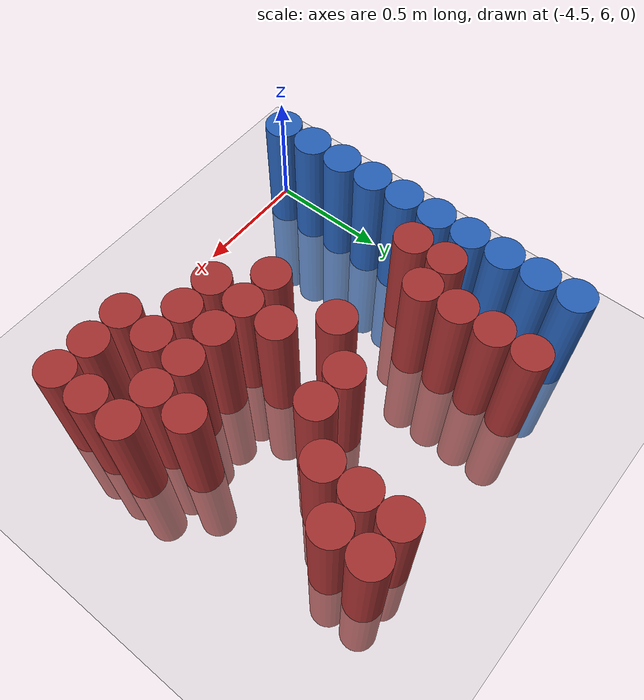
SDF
<sdf version="1.6">
 <world name="default">
  <model name="ground_plane">
   <static>1</static>
   <link name="link">
    <collision name="collision">
     <geometry><plane><normal>0 0 1</normal><size>100 100</size></plane></geometry>
     <surface><friction><ode><mu>100</mu><mu2>50</mu2></ode></friction></surface>
    </collision>
    <visual name="visual">
     <cast_shadows>0</cast_shadows>
     <geometry><plane><normal>0 0 1</normal><size>100 100</size></plane></geometry>
     <material>
      <script><uri>file://media/materials/scripts/gazebo.material</uri><name>Gazebo/Grey</name></script>
     </material>
    </visual>
   </link>
  </model>
  <model name="unit_cylinder_102">
   <static>1</static>
   <pose>-4.425000 6.075000 0.000000 0.000000 0.000000 0.000000</pose>
   <link name="link">
    <inertial>
     <mass>1</mass>
     <inertia><ixx>0.145833</ixx><ixy>0</ixy><ixz>0</ixz><iyy>0.145833</iyy><iyz>0</iyz><izz>0.125</izz></inertia>
    </inertial>
    <collision name="collision">
     <geometry><cylinder><radius>0.075000</radius><length>1</length></cylinder></geometry>
    </collision>
    <visual name="visual">
     <geometry><cylinder><radius>0.075000</radius><length>1</length></cylinder></geometry>
     <material>
      <ambient>0.152000 0.379000 0.720000 1</ambient>
      <diffuse>0.152000 0.379000 0.720000 1</diffuse>
     </material>
     <material>
      <script><name>Gazebo/Grey</name><uri>file://media/materials/scripts/gazebo.material</uri></script>
     </material>
    </visual>
    <sensor name="sensor_contact" type="contact"><contact><collision>collision</collision></contact></sensor>
   </link>
   <plugin filename="gz-sim-touchplugin-system" name="gz::sim::systems::TouchPlugin">
    <target>robot</target>
    <namespace>robot</namespace>
    <time>0.001</time>
    <enabled>true</enabled>
   </plugin>
  </model>
  <model name="unit_cylinder_103">
   <static>1</static>
   <pose>-4.425000 6.225000 0.000000 0.000000 0.000000 0.000000</pose>
   <link name="link">
    <inertial>
     <mass>1</mass>
     <inertia><ixx>0.145833</ixx><ixy>0</ixy><ixz>0</ixz><iyy>0.145833</iyy><iyz>0</iyz><izz>0.125</izz></inertia>
    </inertial>
    <collision name="collision">
     <geometry><cylinder><radius>0.075000</radius><length>1</length></cylinder></geometry>
    </collision>
    <visual name="visual">
     <geometry><cylinder><radius>0.075000</radius><length>1</length></cylinder></geometry>
     <material>
      <ambient>0.152000 0.379000 0.720000 1</ambient>
      <diffuse>0.152000 0.379000 0.720000 1</diffuse>
     </material>
     <material>
      <script><name>Gazebo/Grey</name><uri>file://media/materials/scripts/gazebo.material</uri></script>
     </material>
    </visual>
    <sensor name="sensor_contact" type="contact"><contact><collision>collision</collision></contact></sensor>
   </link>
   <plugin filename="gz-sim-touchplugin-system" name="gz::sim::systems::TouchPlugin">
    <target>robot</target>
    <namespace>robot</namespace>
    <time>0.001</time>
    <enabled>true</enabled>
   </plugin>
  </model>
  <model name="unit_cylinder_104">
   <static>1</static>
   <pose>-4.425000 6.375000 0.000000 0.000000 0.000000 0.000000</pose>
   <link name="link">
    <inertial>
     <mass>1</mass>
     <inertia><ixx>0.145833</ixx><ixy>0</ixy><ixz>0</ixz><iyy>0.145833</iyy><iyz>0</iyz><izz>0.125</izz></inertia>
    </inertial>
    <collision name="collision">
     <geometry><cylinder><radius>0.075000</radius><length>1</length></cylinder></geometry>
    </collision>
    <visual name="visual">
     <geometry><cylinder><radius>0.075000</radius><length>1</length></cylinder></geometry>
     <material>
      <ambient>0.152000 0.379000 0.720000 1</ambient>
      <diffuse>0.152000 0.379000 0.720000 1</diffuse>
     </material>
     <material>
      <script><name>Gazebo/Grey</name><uri>file://media/materials/scripts/gazebo.material</uri></script>
     </material>
    </visual>
    <sensor name="sensor_contact" type="contact"><contact><collision>collision</collision></contact></sensor>
   </link>
   <plugin filename="gz-sim-touchplugin-system" name="gz::sim::systems::TouchPlugin">
    <target>robot</target>
    <namespace>robot</namespace>
    <time>0.001</time>
    <enabled>true</enabled>
   </plugin>
  </model>
  <model name="unit_cylinder_105">
   <static>1</static>
   <pose>-4.425000 6.525000 0.000000 0.000000 0.000000 0.000000</pose>
   <link name="link">
    <inertial>
     <mass>1</mass>
     <inertia><ixx>0.145833</ixx><ixy>0</ixy><ixz>0</ixz><iyy>0.145833</iyy><iyz>0</iyz><izz>0.125</izz></inertia>
    </inertial>
    <collision name="collision">
     <geometry><cylinder><radius>0.075000</radius><length>1</length></cylinder></geometry>
    </collision>
    <visual name="visual">
     <geometry><cylinder><radius>0.075000</radius><length>1</length></cylinder></geometry>
     <material>
      <ambient>0.152000 0.379000 0.720000 1</ambient>
      <diffuse>0.152000 0.379000 0.720000 1</diffuse>
     </material>
     <material>
      <script><name>Gazebo/Grey</name><uri>file://media/materials/scripts/gazebo.material</uri></script>
     </material>
    </visual>
    <sensor name="sensor_contact" type="contact"><contact><collision>collision</collision></contact></sensor>
   </link>
   <plugin filename="gz-sim-touchplugin-system" name="gz::sim::systems::TouchPlugin">
    <target>robot</target>
    <namespace>robot</namespace>
    <time>0.001</time>
    <enabled>true</enabled>
   </plugin>
  </model>
  <model name="unit_cylinder_106">
   <static>1</static>
   <pose>-4.425000 6.675000 0.000000 0.000000 0.000000 0.000000</pose>
   <link name="link">
    <inertial>
     <mass>1</mass>
     <inertia><ixx>0.145833</ixx><ixy>0</ixy><ixz>0</ixz><iyy>0.145833</iyy><iyz>0</iyz><izz>0.125</izz></inertia>
    </inertial>
    <collision name="collision">
     <geometry><cylinder><radius>0.075000</radius><length>1</length></cylinder></geometry>
    </collision>
    <visual name="visual">
     <geometry><cylinder><radius>0.075000</radius><length>1</length></cylinder></geometry>
     <material>
      <ambient>0.152000 0.379000 0.720000 1</ambient>
      <diffuse>0.152000 0.379000 0.720000 1</diffuse>
     </material>
     <material>
      <script><name>Gazebo/Grey</name><uri>file://media/materials/scripts/gazebo.material</uri></script>
     </material>
    </visual>
    <sensor name="sensor_contact" type="contact"><contact><collision>collision</collision></contact></sensor>
   </link>
   <plugin filename="gz-sim-touchplugin-system" name="gz::sim::systems::TouchPlugin">
    <target>robot</target>
    <namespace>robot</namespace>
    <time>0.001</time>
    <enabled>true</enabled>
   </plugin>
  </model>
  <model name="unit_cylinder_107">
   <static>1</static>
   <pose>-4.425000 6.825000 0.000000 0.000000 0.000000 0.000000</pose>
   <link name="link">
    <inertial>
     <mass>1</mass>
     <inertia><ixx>0.145833</ixx><ixy>0</ixy><ixz>0</ixz><iyy>0.145833</iyy><iyz>0</iyz><izz>0.125</izz></inertia>
    </inertial>
    <collision name="collision">
     <geometry><cylinder><radius>0.075000</radius><length>1</length></cylinder></geometry>
    </collision>
    <visual name="visual">
     <geometry><cylinder><radius>0.075000</radius><length>1</length></cylinder></geometry>
     <material>
      <ambient>0.152000 0.379000 0.720000 1</ambient>
      <diffuse>0.152000 0.379000 0.720000 1</diffuse>
     </material>
     <material>
      <script><name>Gazebo/Grey</name><uri>file://media/materials/scripts/gazebo.material</uri></script>
     </material>
    </visual>
    <sensor name="sensor_contact" type="contact"><contact><collision>collision</collision></contact></sensor>
   </link>
   <plugin filename="gz-sim-touchplugin-system" name="gz::sim::systems::TouchPlugin">
    <target>robot</target>
    <namespace>robot</namespace>
    <time>0.001</time>
    <enabled>true</enabled>
   </plugin>
  </model>
  <model name="unit_cylinder_108">
   <static>1</static>
   <pose>-4.425000 6.975000 0.000000 0.000000 0.000000 0.000000</pose>
   <link name="link">
    <inertial>
     <mass>1</mass>
     <inertia><ixx>0.145833</ixx><ixy>0</ixy><ixz>0</ixz><iyy>0.145833</iyy><iyz>0</iyz><izz>0.125</izz></inertia>
    </inertial>
    <collision name="collision">
     <geometry><cylinder><radius>0.075000</radius><length>1</length></cylinder></geometry>
    </collision>
    <visual name="visual">
     <geometry><cylinder><radius>0.075000</radius><length>1</length></cylinder></geometry>
     <material>
      <ambient>0.152000 0.379000 0.720000 1</ambient>
      <diffuse>0.152000 0.379000 0.720000 1</diffuse>
     </material>
     <material>
      <script><name>Gazebo/Grey</name><uri>file://media/materials/scripts/gazebo.material</uri></script>
     </material>
    </visual>
    <sensor name="sensor_contact" type="contact"><contact><collision>collision</collision></contact></sensor>
   </link>
   <plugin filename="gz-sim-touchplugin-system" name="gz::sim::systems::TouchPlugin">
    <target>robot</target>
    <namespace>robot</namespace>
    <time>0.001</time>
    <enabled>true</enabled>
   </plugin>
  </model>
  <model name="unit_cylinder_109">
   <static>1</static>
   <pose>-4.425000 7.125000 0.000000 0.000000 0.000000 0.000000</pose>
   <link name="link">
    <inertial>
     <mass>1</mass>
     <inertia><ixx>0.145833</ixx><ixy>0</ixy><ixz>0</ixz><iyy>0.145833</iyy><iyz>0</iyz><izz>0.125</izz></inertia>
    </inertial>
    <collision name="collision">
     <geometry><cylinder><radius>0.075000</radius><length>1</length></cylinder></geometry>
    </collision>
    <visual name="visual">
     <geometry><cylinder><radius>0.075000</radius><length>1</length></cylinder></geometry>
     <material>
      <ambient>0.152000 0.379000 0.720000 1</ambient>
      <diffuse>0.152000 0.379000 0.720000 1</diffuse>
     </material>
     <material>
      <script><name>Gazebo/Grey</name><uri>file://media/materials/scripts/gazebo.material</uri></script>
     </material>
    </visual>
    <sensor name="sensor_contact" type="contact"><contact><collision>collision</collision></contact></sensor>
   </link>
   <plugin filename="gz-sim-touchplugin-system" name="gz::sim::systems::TouchPlugin">
    <target>robot</target>
    <namespace>robot</namespace>
    <time>0.001</time>
    <enabled>true</enabled>
   </plugin>
  </model>
  <model name="unit_cylinder_110">
   <static>1</static>
   <pose>-4.425000 7.275000 0.000000 0.000000 0.000000 0.000000</pose>
   <link name="link">
    <inertial>
     <mass>1</mass>
     <inertia><ixx>0.145833</ixx><ixy>0</ixy><ixz>0</ixz><iyy>0.145833</iyy><iyz>0</iyz><izz>0.125</izz></inertia>
    </inertial>
    <collision name="collision">
     <geometry><cylinder><radius>0.075000</radius><length>1</length></cylinder></geometry>
    </collision>
    <visual name="visual">
     <geometry><cylinder><radius>0.075000</radius><length>1</length></cylinder></geometry>
     <material>
      <ambient>0.152000 0.379000 0.720000 1</ambient>
      <diffuse>0.152000 0.379000 0.720000 1</diffuse>
     </material>
     <material>
      <script><name>Gazebo/Grey</name><uri>file://media/materials/scripts/gazebo.material</uri></script>
     </material>
    </visual>
    <sensor name="sensor_contact" type="contact"><contact><collision>collision</collision></contact></sensor>
   </link>
   <plugin filename="gz-sim-touchplugin-system" name="gz::sim::systems::TouchPlugin">
    <target>robot</target>
    <namespace>robot</namespace>
    <time>0.001</time>
    <enabled>true</enabled>
   </plugin>
  </model>
  <model name="unit_cylinder_111">
   <static>1</static>
   <pose>-4.425000 7.425000 0.000000 0.000000 0.000000 0.000000</pose>
   <link name="link">
    <inertial>
     <mass>1</mass>
     <inertia><ixx>0.145833</ixx><ixy>0</ixy><ixz>0</ixz><iyy>0.145833</iyy><iyz>0</iyz><izz>0.125</izz></inertia>
    </inertial>
    <collision name="collision">
     <geometry><cylinder><radius>0.075000</radius><length>1</length></cylinder></geometry>
    </collision>
    <visual name="visual">
     <geometry><cylinder><radius>0.075000</radius><length>1</length></cylinder></geometry>
     <material>
      <ambient>0.152000 0.379000 0.720000 1</ambient>
      <diffuse>0.152000 0.379000 0.720000 1</diffuse>
     </material>
     <material>
      <script><name>Gazebo/Grey</name><uri>file://media/materials/scripts/gazebo.material</uri></script>
     </material>
    </visual>
    <sensor name="sensor_contact" type="contact"><contact><collision>collision</collision></contact></sensor>
   </link>
   <plugin filename="gz-sim-touchplugin-system" name="gz::sim::systems::TouchPlugin">
    <target>robot</target>
    <namespace>robot</namespace>
    <time>0.001</time>
    <enabled>true</enabled>
   </plugin>
  </model>
  <model name="unit_cylinder_130">
   <static>1</static>
   <pose>-4.275000 6.825000 0.000000 0.000000 0.000000 0.000000</pose>
   <link name="link">
    <inertial>
     <mass>1</mass>
     <inertia><ixx>0.145833</ixx><ixy>0</ixy><ixz>0</ixz><iyy>0.145833</iyy><iyz>0</iyz><izz>0.125</izz></inertia>
    </inertial>
    <collision name="collision">
     <geometry><cylinder><radius>0.075000</radius><length>1</length></cylinder></geometry>
    </collision>
    <visual name="visual">
     <geometry><cylinder><radius>0.075000</radius><length>1</length></cylinder></geometry>
     <material>
      <ambient>0.648000 0.192000 0.192000 1</ambient>
      <diffuse>0.648000 0.192000 0.192000 1</diffuse>
     </material>
     <material>
      <script><name>Gazebo/Grey</name><uri>file://media/materials/scripts/gazebo.material</uri></script>
     </material>
    </visual>
    <sensor name="sensor_contact" type="contact"><contact><collision>collision</collision></contact></sensor>
   </link>
   <plugin filename="gz-sim-touchplugin-system" name="gz::sim::systems::TouchPlugin">
    <target>robot</target>
    <namespace>robot</namespace>
    <time>0.001</time>
    <enabled>true</enabled>
   </plugin>
  </model>
  <model name="unit_cylinder_131">
   <static>1</static>
   <pose>-4.275000 6.975000 0.000000 0.000000 0.000000 0.000000</pose>
   <link name="link">
    <inertial>
     <mass>1</mass>
     <inertia><ixx>0.145833</ixx><ixy>0</ixy><ixz>0</ixz><iyy>0.145833</iyy><iyz>0</iyz><izz>0.125</izz></inertia>
    </inertial>
    <collision name="collision">
     <geometry><cylinder><radius>0.075000</radius><length>1</length></cylinder></geometry>
    </collision>
    <visual name="visual">
     <geometry><cylinder><radius>0.075000</radius><length>1</length></cylinder></geometry>
     <material>
      <ambient>0.648000 0.192000 0.192000 1</ambient>
      <diffuse>0.648000 0.192000 0.192000 1</diffuse>
     </material>
     <material>
      <script><name>Gazebo/Grey</name><uri>file://media/materials/scripts/gazebo.material</uri></script>
     </material>
    </visual>
    <sensor name="sensor_contact" type="contact"><contact><collision>collision</collision></contact></sensor>
   </link>
   <plugin filename="gz-sim-touchplugin-system" name="gz::sim::systems::TouchPlugin">
    <target>robot</target>
    <namespace>robot</namespace>
    <time>0.001</time>
    <enabled>true</enabled>
   </plugin>
  </model>
  <model name="unit_cylinder_136">
   <static>1</static>
   <pose>-4.125000 6.975000 0.000000 0.000000 0.000000 0.000000</pose>
   <link name="link">
    <inertial>
     <mass>1</mass>
     <inertia><ixx>0.145833</ixx><ixy>0</ixy><ixz>0</ixz><iyy>0.145833</iyy><iyz>0</iyz><izz>0.125</izz></inertia>
    </inertial>
    <collision name="collision">
     <geometry><cylinder><radius>0.075000</radius><length>1</length></cylinder></geometry>
    </collision>
    <visual name="visual">
     <geometry><cylinder><radius>0.075000</radius><length>1</length></cylinder></geometry>
     <material>
      <ambient>0.648000 0.192000 0.192000 1</ambient>
      <diffuse>0.648000 0.192000 0.192000 1</diffuse>
     </material>
     <material>
      <script><name>Gazebo/Grey</name><uri>file://media/materials/scripts/gazebo.material</uri></script>
     </material>
    </visual>
    <sensor name="sensor_contact" type="contact"><contact><collision>collision</collision></contact></sensor>
   </link>
   <plugin filename="gz-sim-touchplugin-system" name="gz::sim::systems::TouchPlugin">
    <target>robot</target>
    <namespace>robot</namespace>
    <time>0.001</time>
    <enabled>true</enabled>
   </plugin>
  </model>
  <model name="unit_cylinder_137">
   <static>1</static>
   <pose>-4.125000 7.125000 0.000000 0.000000 0.000000 0.000000</pose>
   <link name="link">
    <inertial>
     <mass>1</mass>
     <inertia><ixx>0.145833</ixx><ixy>0</ixy><ixz>0</ixz><iyy>0.145833</iyy><iyz>0</iyz><izz>0.125</izz></inertia>
    </inertial>
    <collision name="collision">
     <geometry><cylinder><radius>0.075000</radius><length>1</length></cylinder></geometry>
    </collision>
    <visual name="visual">
     <geometry><cylinder><radius>0.075000</radius><length>1</length></cylinder></geometry>
     <material>
      <ambient>0.648000 0.192000 0.192000 1</ambient>
      <diffuse>0.648000 0.192000 0.192000 1</diffuse>
     </material>
     <material>
      <script><name>Gazebo/Grey</name><uri>file://media/materials/scripts/gazebo.material</uri></script>
     </material>
    </visual>
    <sensor name="sensor_contact" type="contact"><contact><collision>collision</collision></contact></sensor>
   </link>
   <plugin filename="gz-sim-touchplugin-system" name="gz::sim::systems::TouchPlugin">
    <target>robot</target>
    <namespace>robot</namespace>
    <time>0.001</time>
    <enabled>true</enabled>
   </plugin>
  </model>
  <model name="unit_cylinder_138">
   <static>1</static>
   <pose>-4.125000 7.275000 0.000000 0.000000 0.000000 0.000000</pose>
   <link name="link">
    <inertial>
     <mass>1</mass>
     <inertia><ixx>0.145833</ixx><ixy>0</ixy><ixz>0</ixz><iyy>0.145833</iyy><iyz>0</iyz><izz>0.125</izz></inertia>
    </inertial>
    <collision name="collision">
     <geometry><cylinder><radius>0.075000</radius><length>1</length></cylinder></geometry>
    </collision>
    <visual name="visual">
     <geometry><cylinder><radius>0.075000</radius><length>1</length></cylinder></geometry>
     <material>
      <ambient>0.648000 0.192000 0.192000 1</ambient>
      <diffuse>0.648000 0.192000 0.192000 1</diffuse>
     </material>
     <material>
      <script><name>Gazebo/Grey</name><uri>file://media/materials/scripts/gazebo.material</uri></script>
     </material>
    </visual>
    <sensor name="sensor_contact" type="contact"><contact><collision>collision</collision></contact></sensor>
   </link>
   <plugin filename="gz-sim-touchplugin-system" name="gz::sim::systems::TouchPlugin">
    <target>robot</target>
    <namespace>robot</namespace>
    <time>0.001</time>
    <enabled>true</enabled>
   </plugin>
  </model>
  <model name="unit_cylinder_139">
   <static>1</static>
   <pose>-4.125000 7.425000 0.000000 0.000000 0.000000 0.000000</pose>
   <link name="link">
    <inertial>
     <mass>1</mass>
     <inertia><ixx>0.145833</ixx><ixy>0</ixy><ixz>0</ixz><iyy>0.145833</iyy><iyz>0</iyz><izz>0.125</izz></inertia>
    </inertial>
    <collision name="collision">
     <geometry><cylinder><radius>0.075000</radius><length>1</length></cylinder></geometry>
    </collision>
    <visual name="visual">
     <geometry><cylinder><radius>0.075000</radius><length>1</length></cylinder></geometry>
     <material>
      <ambient>0.648000 0.192000 0.192000 1</ambient>
      <diffuse>0.648000 0.192000 0.192000 1</diffuse>
     </material>
     <material>
      <script><name>Gazebo/Grey</name><uri>file://media/materials/scripts/gazebo.material</uri></script>
     </material>
    </visual>
    <sensor name="sensor_contact" type="contact"><contact><collision>collision</collision></contact></sensor>
   </link>
   <plugin filename="gz-sim-touchplugin-system" name="gz::sim::systems::TouchPlugin">
    <target>robot</target>
    <namespace>robot</namespace>
    <time>0.001</time>
    <enabled>true</enabled>
   </plugin>
  </model>
  <model name="unit_cylinder_149">
   <static>1</static>
   <pose>-3.825000 6.525000 0.000000 0.000000 0.000000 0.000000</pose>
   <link name="link">
    <inertial>
     <mass>1</mass>
     <inertia><ixx>0.145833</ixx><ixy>0</ixy><ixz>0</ixz><iyy>0.145833</iyy><iyz>0</iyz><izz>0.125</izz></inertia>
    </inertial>
    <collision name="collision">
     <geometry><cylinder><radius>0.075000</radius><length>1</length></cylinder></geometry>
    </collision>
    <visual name="visual">
     <geometry><cylinder><radius>0.075000</radius><length>1</length></cylinder></geometry>
     <material>
      <ambient>0.648000 0.192000 0.192000 1</ambient>
      <diffuse>0.648000 0.192000 0.192000 1</diffuse>
     </material>
     <material>
      <script><name>Gazebo/Grey</name><uri>file://media/materials/scripts/gazebo.material</uri></script>
     </material>
    </visual>
    <sensor name="sensor_contact" type="contact"><contact><collision>collision</collision></contact></sensor>
   </link>
   <plugin filename="gz-sim-touchplugin-system" name="gz::sim::systems::TouchPlugin">
    <target>robot</target>
    <namespace>robot</namespace>
    <time>0.001</time>
    <enabled>true</enabled>
   </plugin>
  </model>
  <model name="unit_cylinder_150">
   <static>1</static>
   <pose>-3.825000 6.825000 0.000000 0.000000 0.000000 0.000000</pose>
   <link name="link">
    <inertial>
     <mass>1</mass>
     <inertia><ixx>0.145833</ixx><ixy>0</ixy><ixz>0</ixz><iyy>0.145833</iyy><iyz>0</iyz><izz>0.125</izz></inertia>
    </inertial>
    <collision name="collision">
     <geometry><cylinder><radius>0.075000</radius><length>1</length></cylinder></geometry>
    </collision>
    <visual name="visual">
     <geometry><cylinder><radius>0.075000</radius><length>1</length></cylinder></geometry>
     <material>
      <ambient>0.648000 0.192000 0.192000 1</ambient>
      <diffuse>0.648000 0.192000 0.192000 1</diffuse>
     </material>
     <material>
      <script><name>Gazebo/Grey</name><uri>file://media/materials/scripts/gazebo.material</uri></script>
     </material>
    </visual>
    <sensor name="sensor_contact" type="contact"><contact><collision>collision</collision></contact></sensor>
   </link>
   <plugin filename="gz-sim-touchplugin-system" name="gz::sim::systems::TouchPlugin">
    <target>robot</target>
    <namespace>robot</namespace>
    <time>0.001</time>
    <enabled>true</enabled>
   </plugin>
  </model>
  <model name="unit_cylinder_156">
   <static>1</static>
   <pose>-3.675000 6.375000 0.000000 0.000000 0.000000 0.000000</pose>
   <link name="link">
    <inertial>
     <mass>1</mass>
     <inertia><ixx>0.145833</ixx><ixy>0</ixy><ixz>0</ixz><iyy>0.145833</iyy><iyz>0</iyz><izz>0.125</izz></inertia>
    </inertial>
    <collision name="collision">
     <geometry><cylinder><radius>0.075000</radius><length>1</length></cylinder></geometry>
    </collision>
    <visual name="visual">
     <geometry><cylinder><radius>0.075000</radius><length>1</length></cylinder></geometry>
     <material>
      <ambient>0.648000 0.192000 0.192000 1</ambient>
      <diffuse>0.648000 0.192000 0.192000 1</diffuse>
     </material>
     <material>
      <script><name>Gazebo/Grey</name><uri>file://media/materials/scripts/gazebo.material</uri></script>
     </material>
    </visual>
    <sensor name="sensor_contact" type="contact"><contact><collision>collision</collision></contact></sensor>
   </link>
   <plugin filename="gz-sim-touchplugin-system" name="gz::sim::systems::TouchPlugin">
    <target>robot</target>
    <namespace>robot</namespace>
    <time>0.001</time>
    <enabled>true</enabled>
   </plugin>
  </model>
  <model name="unit_cylinder_157">
   <static>1</static>
   <pose>-3.675000 6.525000 0.000000 0.000000 0.000000 0.000000</pose>
   <link name="link">
    <inertial>
     <mass>1</mass>
     <inertia><ixx>0.145833</ixx><ixy>0</ixy><ixz>0</ixz><iyy>0.145833</iyy><iyz>0</iyz><izz>0.125</izz></inertia>
    </inertial>
    <collision name="collision">
     <geometry><cylinder><radius>0.075000</radius><length>1</length></cylinder></geometry>
    </collision>
    <visual name="visual">
     <geometry><cylinder><radius>0.075000</radius><length>1</length></cylinder></geometry>
     <material>
      <ambient>0.648000 0.192000 0.192000 1</ambient>
      <diffuse>0.648000 0.192000 0.192000 1</diffuse>
     </material>
     <material>
      <script><name>Gazebo/Grey</name><uri>file://media/materials/scripts/gazebo.material</uri></script>
     </material>
    </visual>
    <sensor name="sensor_contact" type="contact"><contact><collision>collision</collision></contact></sensor>
   </link>
   <plugin filename="gz-sim-touchplugin-system" name="gz::sim::systems::TouchPlugin">
    <target>robot</target>
    <namespace>robot</namespace>
    <time>0.001</time>
    <enabled>true</enabled>
   </plugin>
  </model>
  <model name="unit_cylinder_158">
   <static>1</static>
   <pose>-3.675000 6.675000 0.000000 0.000000 0.000000 0.000000</pose>
   <link name="link">
    <inertial>
     <mass>1</mass>
     <inertia><ixx>0.145833</ixx><ixy>0</ixy><ixz>0</ixz><iyy>0.145833</iyy><iyz>0</iyz><izz>0.125</izz></inertia>
    </inertial>
    <collision name="collision">
     <geometry><cylinder><radius>0.075000</radius><length>1</length></cylinder></geometry>
    </collision>
    <visual name="visual">
     <geometry><cylinder><radius>0.075000</radius><length>1</length></cylinder></geometry>
     <material>
      <ambient>0.648000 0.192000 0.192000 1</ambient>
      <diffuse>0.648000 0.192000 0.192000 1</diffuse>
     </material>
     <material>
      <script><name>Gazebo/Grey</name><uri>file://media/materials/scripts/gazebo.material</uri></script>
     </material>
    </visual>
    <sensor name="sensor_contact" type="contact"><contact><collision>collision</collision></contact></sensor>
   </link>
   <plugin filename="gz-sim-touchplugin-system" name="gz::sim::systems::TouchPlugin">
    <target>robot</target>
    <namespace>robot</namespace>
    <time>0.001</time>
    <enabled>true</enabled>
   </plugin>
  </model>
  <model name="unit_cylinder_159">
   <static>1</static>
   <pose>-3.675000 6.975000 0.000000 0.000000 0.000000 0.000000</pose>
   <link name="link">
    <inertial>
     <mass>1</mass>
     <inertia><ixx>0.145833</ixx><ixy>0</ixy><ixz>0</ixz><iyy>0.145833</iyy><iyz>0</iyz><izz>0.125</izz></inertia>
    </inertial>
    <collision name="collision">
     <geometry><cylinder><radius>0.075000</radius><length>1</length></cylinder></geometry>
    </collision>
    <visual name="visual">
     <geometry><cylinder><radius>0.075000</radius><length>1</length></cylinder></geometry>
     <material>
      <ambient>0.648000 0.192000 0.192000 1</ambient>
      <diffuse>0.648000 0.192000 0.192000 1</diffuse>
     </material>
     <material>
      <script><name>Gazebo/Grey</name><uri>file://media/materials/scripts/gazebo.material</uri></script>
     </material>
    </visual>
    <sensor name="sensor_contact" type="contact"><contact><collision>collision</collision></contact></sensor>
   </link>
   <plugin filename="gz-sim-touchplugin-system" name="gz::sim::systems::TouchPlugin">
    <target>robot</target>
    <namespace>robot</namespace>
    <time>0.001</time>
    <enabled>true</enabled>
   </plugin>
  </model>
  <model name="unit_cylinder_165">
   <static>1</static>
   <pose>-3.525000 6.375000 0.000000 0.000000 0.000000 0.000000</pose>
   <link name="link">
    <inertial>
     <mass>1</mass>
     <inertia><ixx>0.145833</ixx><ixy>0</ixy><ixz>0</ixz><iyy>0.145833</iyy><iyz>0</iyz><izz>0.125</izz></inertia>
    </inertial>
    <collision name="collision">
     <geometry><cylinder><radius>0.075000</radius><length>1</length></cylinder></geometry>
    </collision>
    <visual name="visual">
     <geometry><cylinder><radius>0.075000</radius><length>1</length></cylinder></geometry>
     <material>
      <ambient>0.648000 0.192000 0.192000 1</ambient>
      <diffuse>0.648000 0.192000 0.192000 1</diffuse>
     </material>
     <material>
      <script><name>Gazebo/Grey</name><uri>file://media/materials/scripts/gazebo.material</uri></script>
     </material>
    </visual>
    <sensor name="sensor_contact" type="contact"><contact><collision>collision</collision></contact></sensor>
   </link>
   <plugin filename="gz-sim-touchplugin-system" name="gz::sim::systems::TouchPlugin">
    <target>robot</target>
    <namespace>robot</namespace>
    <time>0.001</time>
    <enabled>true</enabled>
   </plugin>
  </model>
  <model name="unit_cylinder_166">
   <static>1</static>
   <pose>-3.525000 6.525000 0.000000 0.000000 0.000000 0.000000</pose>
   <link name="link">
    <inertial>
     <mass>1</mass>
     <inertia><ixx>0.145833</ixx><ixy>0</ixy><ixz>0</ixz><iyy>0.145833</iyy><iyz>0</iyz><izz>0.125</izz></inertia>
    </inertial>
    <collision name="collision">
     <geometry><cylinder><radius>0.075000</radius><length>1</length></cylinder></geometry>
    </collision>
    <visual name="visual">
     <geometry><cylinder><radius>0.075000</radius><length>1</length></cylinder></geometry>
     <material>
      <ambient>0.648000 0.192000 0.192000 1</ambient>
      <diffuse>0.648000 0.192000 0.192000 1</diffuse>
     </material>
     <material>
      <script><name>Gazebo/Grey</name><uri>file://media/materials/scripts/gazebo.material</uri></script>
     </material>
    </visual>
    <sensor name="sensor_contact" type="contact"><contact><collision>collision</collision></contact></sensor>
   </link>
   <plugin filename="gz-sim-touchplugin-system" name="gz::sim::systems::TouchPlugin">
    <target>robot</target>
    <namespace>robot</namespace>
    <time>0.001</time>
    <enabled>true</enabled>
   </plugin>
  </model>
  <model name="unit_cylinder_167">
   <static>1</static>
   <pose>-3.525000 6.975000 0.000000 0.000000 0.000000 0.000000</pose>
   <link name="link">
    <inertial>
     <mass>1</mass>
     <inertia><ixx>0.145833</ixx><ixy>0</ixy><ixz>0</ixz><iyy>0.145833</iyy><iyz>0</iyz><izz>0.125</izz></inertia>
    </inertial>
    <collision name="collision">
     <geometry><cylinder><radius>0.075000</radius><length>1</length></cylinder></geometry>
    </collision>
    <visual name="visual">
     <geometry><cylinder><radius>0.075000</radius><length>1</length></cylinder></geometry>
     <material>
      <ambient>0.648000 0.192000 0.192000 1</ambient>
      <diffuse>0.648000 0.192000 0.192000 1</diffuse>
     </material>
     <material>
      <script><name>Gazebo/Grey</name><uri>file://media/materials/scripts/gazebo.material</uri></script>
     </material>
    </visual>
    <sensor name="sensor_contact" type="contact"><contact><collision>collision</collision></contact></sensor>
   </link>
   <plugin filename="gz-sim-touchplugin-system" name="gz::sim::systems::TouchPlugin">
    <target>robot</target>
    <namespace>robot</namespace>
    <time>0.001</time>
    <enabled>true</enabled>
   </plugin>
  </model>
  <model name="unit_cylinder_173">
   <static>1</static>
   <pose>-3.375000 6.225000 0.000000 0.000000 0.000000 0.000000</pose>
   <link name="link">
    <inertial>
     <mass>1</mass>
     <inertia><ixx>0.145833</ixx><ixy>0</ixy><ixz>0</ixz><iyy>0.145833</iyy><iyz>0</iyz><izz>0.125</izz></inertia>
    </inertial>
    <collision name="collision">
     <geometry><cylinder><radius>0.075000</radius><length>1</length></cylinder></geometry>
    </collision>
    <visual name="visual">
     <geometry><cylinder><radius>0.075000</radius><length>1</length></cylinder></geometry>
     <material>
      <ambient>0.648000 0.192000 0.192000 1</ambient>
      <diffuse>0.648000 0.192000 0.192000 1</diffuse>
     </material>
     <material>
      <script><name>Gazebo/Grey</name><uri>file://media/materials/scripts/gazebo.material</uri></script>
     </material>
    </visual>
    <sensor name="sensor_contact" type="contact"><contact><collision>collision</collision></contact></sensor>
   </link>
   <plugin filename="gz-sim-touchplugin-system" name="gz::sim::systems::TouchPlugin">
    <target>robot</target>
    <namespace>robot</namespace>
    <time>0.001</time>
    <enabled>true</enabled>
   </plugin>
  </model>
  <model name="unit_cylinder_174">
   <static>1</static>
   <pose>-3.375000 6.375000 0.000000 0.000000 0.000000 0.000000</pose>
   <link name="link">
    <inertial>
     <mass>1</mass>
     <inertia><ixx>0.145833</ixx><ixy>0</ixy><ixz>0</ixz><iyy>0.145833</iyy><iyz>0</iyz><izz>0.125</izz></inertia>
    </inertial>
    <collision name="collision">
     <geometry><cylinder><radius>0.075000</radius><length>1</length></cylinder></geometry>
    </collision>
    <visual name="visual">
     <geometry><cylinder><radius>0.075000</radius><length>1</length></cylinder></geometry>
     <material>
      <ambient>0.648000 0.192000 0.192000 1</ambient>
      <diffuse>0.648000 0.192000 0.192000 1</diffuse>
     </material>
     <material>
      <script><name>Gazebo/Grey</name><uri>file://media/materials/scripts/gazebo.material</uri></script>
     </material>
    </visual>
    <sensor name="sensor_contact" type="contact"><contact><collision>collision</collision></contact></sensor>
   </link>
   <plugin filename="gz-sim-touchplugin-system" name="gz::sim::systems::TouchPlugin">
    <target>robot</target>
    <namespace>robot</namespace>
    <time>0.001</time>
    <enabled>true</enabled>
   </plugin>
  </model>
  <model name="unit_cylinder_175">
   <static>1</static>
   <pose>-3.375000 6.525000 0.000000 0.000000 0.000000 0.000000</pose>
   <link name="link">
    <inertial>
     <mass>1</mass>
     <inertia><ixx>0.145833</ixx><ixy>0</ixy><ixz>0</ixz><iyy>0.145833</iyy><iyz>0</iyz><izz>0.125</izz></inertia>
    </inertial>
    <collision name="collision">
     <geometry><cylinder><radius>0.075000</radius><length>1</length></cylinder></geometry>
    </collision>
    <visual name="visual">
     <geometry><cylinder><radius>0.075000</radius><length>1</length></cylinder></geometry>
     <material>
      <ambient>0.648000 0.192000 0.192000 1</ambient>
      <diffuse>0.648000 0.192000 0.192000 1</diffuse>
     </material>
     <material>
      <script><name>Gazebo/Grey</name><uri>file://media/materials/scripts/gazebo.material</uri></script>
     </material>
    </visual>
    <sensor name="sensor_contact" type="contact"><contact><collision>collision</collision></contact></sensor>
   </link>
   <plugin filename="gz-sim-touchplugin-system" name="gz::sim::systems::TouchPlugin">
    <target>robot</target>
    <namespace>robot</namespace>
    <time>0.001</time>
    <enabled>true</enabled>
   </plugin>
  </model>
  <model name="unit_cylinder_176">
   <static>1</static>
   <pose>-3.375000 7.125000 0.000000 0.000000 0.000000 0.000000</pose>
   <link name="link">
    <inertial>
     <mass>1</mass>
     <inertia><ixx>0.145833</ixx><ixy>0</ixy><ixz>0</ixz><iyy>0.145833</iyy><iyz>0</iyz><izz>0.125</izz></inertia>
    </inertial>
    <collision name="collision">
     <geometry><cylinder><radius>0.075000</radius><length>1</length></cylinder></geometry>
    </collision>
    <visual name="visual">
     <geometry><cylinder><radius>0.075000</radius><length>1</length></cylinder></geometry>
     <material>
      <ambient>0.648000 0.192000 0.192000 1</ambient>
      <diffuse>0.648000 0.192000 0.192000 1</diffuse>
     </material>
     <material>
      <script><name>Gazebo/Grey</name><uri>file://media/materials/scripts/gazebo.material</uri></script>
     </material>
    </visual>
    <sensor name="sensor_contact" type="contact"><contact><collision>collision</collision></contact></sensor>
   </link>
   <plugin filename="gz-sim-touchplugin-system" name="gz::sim::systems::TouchPlugin">
    <target>robot</target>
    <namespace>robot</namespace>
    <time>0.001</time>
    <enabled>true</enabled>
   </plugin>
  </model>
  <model name="unit_cylinder_177">
   <static>1</static>
   <pose>-3.375000 7.275000 0.000000 0.000000 0.000000 0.000000</pose>
   <link name="link">
    <inertial>
     <mass>1</mass>
     <inertia><ixx>0.145833</ixx><ixy>0</ixy><ixz>0</ixz><iyy>0.145833</iyy><iyz>0</iyz><izz>0.125</izz></inertia>
    </inertial>
    <collision name="collision">
     <geometry><cylinder><radius>0.075000</radius><length>1</length></cylinder></geometry>
    </collision>
    <visual name="visual">
     <geometry><cylinder><radius>0.075000</radius><length>1</length></cylinder></geometry>
     <material>
      <ambient>0.648000 0.192000 0.192000 1</ambient>
      <diffuse>0.648000 0.192000 0.192000 1</diffuse>
     </material>
     <material>
      <script><name>Gazebo/Grey</name><uri>file://media/materials/scripts/gazebo.material</uri></script>
     </material>
    </visual>
    <sensor name="sensor_contact" type="contact"><contact><collision>collision</collision></contact></sensor>
   </link>
   <plugin filename="gz-sim-touchplugin-system" name="gz::sim::systems::TouchPlugin">
    <target>robot</target>
    <namespace>robot</namespace>
    <time>0.001</time>
    <enabled>true</enabled>
   </plugin>
  </model>
  <model name="unit_cylinder_178">
   <static>1</static>
   <pose>-3.375000 7.425000 0.000000 0.000000 0.000000 0.000000</pose>
   <link name="link">
    <inertial>
     <mass>1</mass>
     <inertia><ixx>0.145833</ixx><ixy>0</ixy><ixz>0</ixz><iyy>0.145833</iyy><iyz>0</iyz><izz>0.125</izz></inertia>
    </inertial>
    <collision name="collision">
     <geometry><cylinder><radius>0.075000</radius><length>1</length></cylinder></geometry>
    </collision>
    <visual name="visual">
     <geometry><cylinder><radius>0.075000</radius><length>1</length></cylinder></geometry>
     <material>
      <ambient>0.648000 0.192000 0.192000 1</ambient>
      <diffuse>0.648000 0.192000 0.192000 1</diffuse>
     </material>
     <material>
      <script><name>Gazebo/Grey</name><uri>file://media/materials/scripts/gazebo.material</uri></script>
     </material>
    </visual>
    <sensor name="sensor_contact" type="contact"><contact><collision>collision</collision></contact></sensor>
   </link>
   <plugin filename="gz-sim-touchplugin-system" name="gz::sim::systems::TouchPlugin">
    <target>robot</target>
    <namespace>robot</namespace>
    <time>0.001</time>
    <enabled>true</enabled>
   </plugin>
  </model>
  <model name="unit_cylinder_183">
   <static>1</static>
   <pose>-3.225000 6.225000 0.000000 0.000000 0.000000 0.000000</pose>
   <link name="link">
    <inertial>
     <mass>1</mass>
     <inertia><ixx>0.145833</ixx><ixy>0</ixy><ixz>0</ixz><iyy>0.145833</iyy><iyz>0</iyz><izz>0.125</izz></inertia>
    </inertial>
    <collision name="collision">
     <geometry><cylinder><radius>0.075000</radius><length>1</length></cylinder></geometry>
    </collision>
    <visual name="visual">
     <geometry><cylinder><radius>0.075000</radius><length>1</length></cylinder></geometry>
     <material>
      <ambient>0.648000 0.192000 0.192000 1</ambient>
      <diffuse>0.648000 0.192000 0.192000 1</diffuse>
     </material>
     <material>
      <script><name>Gazebo/Grey</name><uri>file://media/materials/scripts/gazebo.material</uri></script>
     </material>
    </visual>
    <sensor name="sensor_contact" type="contact"><contact><collision>collision</collision></contact></sensor>
   </link>
   <plugin filename="gz-sim-touchplugin-system" name="gz::sim::systems::TouchPlugin">
    <target>robot</target>
    <namespace>robot</namespace>
    <time>0.001</time>
    <enabled>true</enabled>
   </plugin>
  </model>
  <model name="unit_cylinder_184">
   <static>1</static>
   <pose>-3.225000 6.525000 0.000000 0.000000 0.000000 0.000000</pose>
   <link name="link">
    <inertial>
     <mass>1</mass>
     <inertia><ixx>0.145833</ixx><ixy>0</ixy><ixz>0</ixz><iyy>0.145833</iyy><iyz>0</iyz><izz>0.125</izz></inertia>
    </inertial>
    <collision name="collision">
     <geometry><cylinder><radius>0.075000</radius><length>1</length></cylinder></geometry>
    </collision>
    <visual name="visual">
     <geometry><cylinder><radius>0.075000</radius><length>1</length></cylinder></geometry>
     <material>
      <ambient>0.648000 0.192000 0.192000 1</ambient>
      <diffuse>0.648000 0.192000 0.192000 1</diffuse>
     </material>
     <material>
      <script><name>Gazebo/Grey</name><uri>file://media/materials/scripts/gazebo.material</uri></script>
     </material>
    </visual>
    <sensor name="sensor_contact" type="contact"><contact><collision>collision</collision></contact></sensor>
   </link>
   <plugin filename="gz-sim-touchplugin-system" name="gz::sim::systems::TouchPlugin">
    <target>robot</target>
    <namespace>robot</namespace>
    <time>0.001</time>
    <enabled>true</enabled>
   </plugin>
  </model>
  <model name="unit_cylinder_185">
   <static>1</static>
   <pose>-3.225000 6.675000 0.000000 0.000000 0.000000 0.000000</pose>
   <link name="link">
    <inertial>
     <mass>1</mass>
     <inertia><ixx>0.145833</ixx><ixy>0</ixy><ixz>0</ixz><iyy>0.145833</iyy><iyz>0</iyz><izz>0.125</izz></inertia>
    </inertial>
    <collision name="collision">
     <geometry><cylinder><radius>0.075000</radius><length>1</length></cylinder></geometry>
    </collision>
    <visual name="visual">
     <geometry><cylinder><radius>0.075000</radius><length>1</length></cylinder></geometry>
     <material>
      <ambient>0.648000 0.192000 0.192000 1</ambient>
      <diffuse>0.648000 0.192000 0.192000 1</diffuse>
     </material>
     <material>
      <script><name>Gazebo/Grey</name><uri>file://media/materials/scripts/gazebo.material</uri></script>
     </material>
    </visual>
    <sensor name="sensor_contact" type="contact"><contact><collision>collision</collision></contact></sensor>
   </link>
   <plugin filename="gz-sim-touchplugin-system" name="gz::sim::systems::TouchPlugin">
    <target>robot</target>
    <namespace>robot</namespace>
    <time>0.001</time>
    <enabled>true</enabled>
   </plugin>
  </model>
  <model name="unit_cylinder_186">
   <static>1</static>
   <pose>-3.225000 7.275000 0.000000 0.000000 0.000000 0.000000</pose>
   <link name="link">
    <inertial>
     <mass>1</mass>
     <inertia><ixx>0.145833</ixx><ixy>0</ixy><ixz>0</ixz><iyy>0.145833</iyy><iyz>0</iyz><izz>0.125</izz></inertia>
    </inertial>
    <collision name="collision">
     <geometry><cylinder><radius>0.075000</radius><length>1</length></cylinder></geometry>
    </collision>
    <visual name="visual">
     <geometry><cylinder><radius>0.075000</radius><length>1</length></cylinder></geometry>
     <material>
      <ambient>0.648000 0.192000 0.192000 1</ambient>
      <diffuse>0.648000 0.192000 0.192000 1</diffuse>
     </material>
     <material>
      <script><name>Gazebo/Grey</name><uri>file://media/materials/scripts/gazebo.material</uri></script>
     </material>
    </visual>
    <sensor name="sensor_contact" type="contact"><contact><collision>collision</collision></contact></sensor>
   </link>
   <plugin filename="gz-sim-touchplugin-system" name="gz::sim::systems::TouchPlugin">
    <target>robot</target>
    <namespace>robot</namespace>
    <time>0.001</time>
    <enabled>true</enabled>
   </plugin>
  </model>
  <model name="unit_cylinder_187">
   <static>1</static>
   <pose>-3.225000 7.425000 0.000000 0.000000 0.000000 0.000000</pose>
   <link name="link">
    <inertial>
     <mass>1</mass>
     <inertia><ixx>0.145833</ixx><ixy>0</ixy><ixz>0</ixz><iyy>0.145833</iyy><iyz>0</iyz><izz>0.125</izz></inertia>
    </inertial>
    <collision name="collision">
     <geometry><cylinder><radius>0.075000</radius><length>1</length></cylinder></geometry>
    </collision>
    <visual name="visual">
     <geometry><cylinder><radius>0.075000</radius><length>1</length></cylinder></geometry>
     <material>
      <ambient>0.648000 0.192000 0.192000 1</ambient>
      <diffuse>0.648000 0.192000 0.192000 1</diffuse>
     </material>
     <material>
      <script><name>Gazebo/Grey</name><uri>file://media/materials/scripts/gazebo.material</uri></script>
     </material>
    </visual>
    <sensor name="sensor_contact" type="contact"><contact><collision>collision</collision></contact></sensor>
   </link>
   <plugin filename="gz-sim-touchplugin-system" name="gz::sim::systems::TouchPlugin">
    <target>robot</target>
    <namespace>robot</namespace>
    <time>0.001</time>
    <enabled>true</enabled>
   </plugin>
  </model>
  <model name="unit_cylinder_193">
   <static>1</static>
   <pose>-3.075000 6.225000 0.000000 0.000000 0.000000 0.000000</pose>
   <link name="link">
    <inertial>
     <mass>1</mass>
     <inertia><ixx>0.145833</ixx><ixy>0</ixy><ixz>0</ixz><iyy>0.145833</iyy><iyz>0</iyz><izz>0.125</izz></inertia>
    </inertial>
    <collision name="collision">
     <geometry><cylinder><radius>0.075000</radius><length>1</length></cylinder></geometry>
    </collision>
    <visual name="visual">
     <geometry><cylinder><radius>0.075000</radius><length>1</length></cylinder></geometry>
     <material>
      <ambient>0.648000 0.192000 0.192000 1</ambient>
      <diffuse>0.648000 0.192000 0.192000 1</diffuse>
     </material>
     <material>
      <script><name>Gazebo/Grey</name><uri>file://media/materials/scripts/gazebo.material</uri></script>
     </material>
    </visual>
    <sensor name="sensor_contact" type="contact"><contact><collision>collision</collision></contact></sensor>
   </link>
   <plugin filename="gz-sim-touchplugin-system" name="gz::sim::systems::TouchPlugin">
    <target>robot</target>
    <namespace>robot</namespace>
    <time>0.001</time>
    <enabled>true</enabled>
   </plugin>
  </model>
  <model name="unit_cylinder_194">
   <static>1</static>
   <pose>-3.075000 6.375000 0.000000 0.000000 0.000000 0.000000</pose>
   <link name="link">
    <inertial>
     <mass>1</mass>
     <inertia><ixx>0.145833</ixx><ixy>0</ixy><ixz>0</ixz><iyy>0.145833</iyy><iyz>0</iyz><izz>0.125</izz></inertia>
    </inertial>
    <collision name="collision">
     <geometry><cylinder><radius>0.075000</radius><length>1</length></cylinder></geometry>
    </collision>
    <visual name="visual">
     <geometry><cylinder><radius>0.075000</radius><length>1</length></cylinder></geometry>
     <material>
      <ambient>0.648000 0.192000 0.192000 1</ambient>
      <diffuse>0.648000 0.192000 0.192000 1</diffuse>
     </material>
     <material>
      <script><name>Gazebo/Grey</name><uri>file://media/materials/scripts/gazebo.material</uri></script>
     </material>
    </visual>
    <sensor name="sensor_contact" type="contact"><contact><collision>collision</collision></contact></sensor>
   </link>
   <plugin filename="gz-sim-touchplugin-system" name="gz::sim::systems::TouchPlugin">
    <target>robot</target>
    <namespace>robot</namespace>
    <time>0.001</time>
    <enabled>true</enabled>
   </plugin>
  </model>
  <model name="unit_cylinder_195">
   <static>1</static>
   <pose>-3.075000 6.525000 0.000000 0.000000 0.000000 0.000000</pose>
   <link name="link">
    <inertial>
     <mass>1</mass>
     <inertia><ixx>0.145833</ixx><ixy>0</ixy><ixz>0</ixz><iyy>0.145833</iyy><iyz>0</iyz><izz>0.125</izz></inertia>
    </inertial>
    <collision name="collision">
     <geometry><cylinder><radius>0.075000</radius><length>1</length></cylinder></geometry>
    </collision>
    <visual name="visual">
     <geometry><cylinder><radius>0.075000</radius><length>1</length></cylinder></geometry>
     <material>
      <ambient>0.648000 0.192000 0.192000 1</ambient>
      <diffuse>0.648000 0.192000 0.192000 1</diffuse>
     </material>
     <material>
      <script><name>Gazebo/Grey</name><uri>file://media/materials/scripts/gazebo.material</uri></script>
     </material>
    </visual>
    <sensor name="sensor_contact" type="contact"><contact><collision>collision</collision></contact></sensor>
   </link>
   <plugin filename="gz-sim-touchplugin-system" name="gz::sim::systems::TouchPlugin">
    <target>robot</target>
    <namespace>robot</namespace>
    <time>0.001</time>
    <enabled>true</enabled>
   </plugin>
  </model>
 </world>
</sdf>
